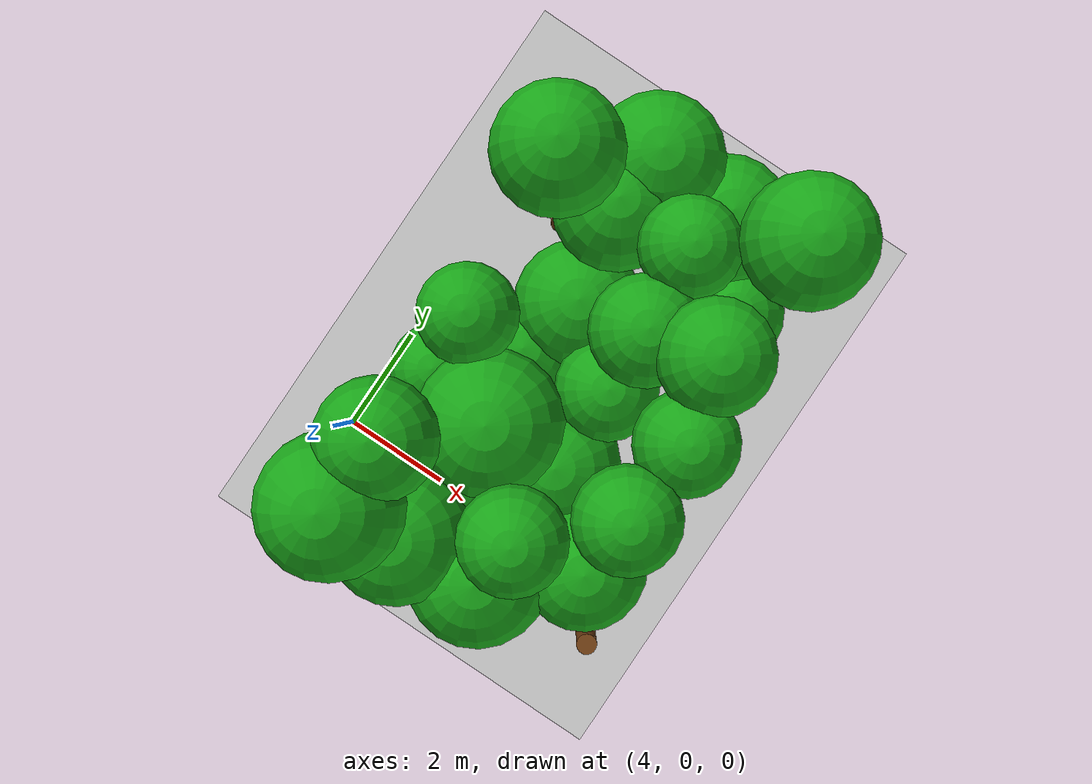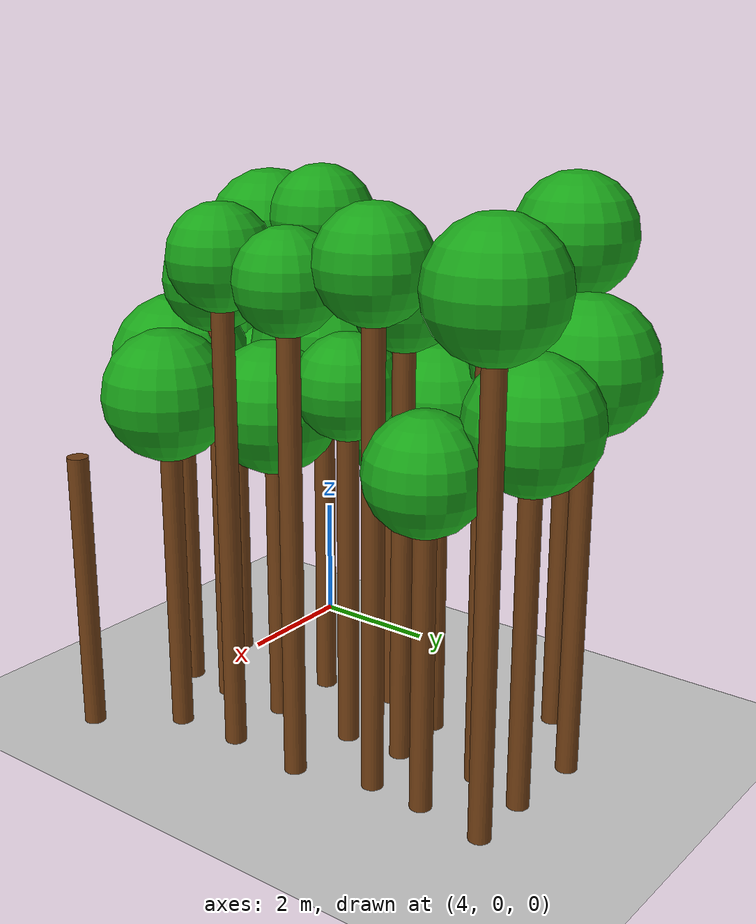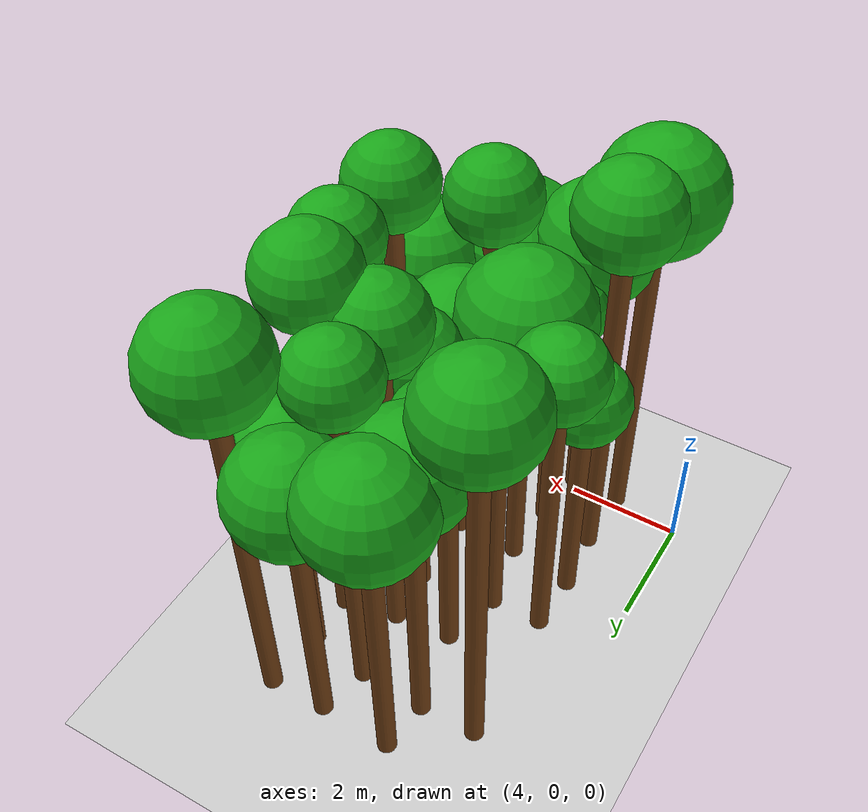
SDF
<sdf version="1.6">
 <world name="forest_world">
  <include><uri>model://sun</uri></include>
  <include><uri>model://ground_plane</uri></include>
  <model name="tree_1764_trunk">
   <static>true</static>
   <pose>5.23 -0.19 3.22 0 0 0</pose>
   <link name="link">
    <collision name="collision">
     <geometry><cylinder><radius>0.16</radius><length>6.44</length></cylinder></geometry>
    </collision>
    <visual name="visual">
     <geometry><cylinder><radius>0.16</radius><length>6.44</length></cylinder></geometry>
     <material><ambient>0.35 0.20 0.05 1</ambient><diffuse>0.45 0.25 0.08 1</diffuse></material>
    </visual>
   </link>
  </model>
  <model name="tree_1764_leaf">
   <static>true</static>
   <pose>5.23 -0.19 7.05 0 0 0</pose>
   <link name="link">
    <collision name="collision"><geometry><sphere><radius>1.02</radius></sphere></geometry></collision>
    <visual name="visual">
     <geometry><sphere><radius>1.02</radius></sphere></geometry>
     <material><ambient>0.05 0.45 0.05 1</ambient><diffuse>0.10 0.65 0.10 1</diffuse></material>
    </visual>
   </link>
  </model>
  <model name="tree_1765_trunk">
   <static>true</static>
   <pose>5.27 0.92 3.44 0 0 0</pose>
   <link name="link">
    <collision name="collision">
     <geometry><cylinder><radius>0.16</radius><length>6.87</length></cylinder></geometry>
    </collision>
    <visual name="visual">
     <geometry><cylinder><radius>0.16</radius><length>6.87</length></cylinder></geometry>
     <material><ambient>0.35 0.20 0.05 1</ambient><diffuse>0.45 0.25 0.08 1</diffuse></material>
    </visual>
   </link>
  </model>
  <model name="tree_1765_leaf">
   <static>true</static>
   <pose>5.27 0.92 7.38 0 0 0</pose>
   <link name="link">
    <collision name="collision"><geometry><sphere><radius>0.84</radius></sphere></geometry></collision>
    <visual name="visual">
     <geometry><sphere><radius>0.84</radius></sphere></geometry>
     <material><ambient>0.05 0.45 0.05 1</ambient><diffuse>0.10 0.65 0.10 1</diffuse></material>
    </visual>
   </link>
  </model>
  <model name="tree_1766_trunk">
   <static>true</static>
   <pose>5.18 1.97 2.12 0 0 0</pose>
   <link name="link">
    <collision name="collision">
     <geometry><cylinder><radius>0.16</radius><length>4.24</length></cylinder></geometry>
    </collision>
    <visual name="visual">
     <geometry><cylinder><radius>0.16</radius><length>4.24</length></cylinder></geometry>
     <material><ambient>0.35 0.20 0.05 1</ambient><diffuse>0.45 0.25 0.08 1</diffuse></material>
    </visual>
   </link>
  </model>
  <model name="tree_1766_leaf">
   <static>true</static>
   <pose>5.18 1.97 4.67 0 0 0</pose>
   <link name="link">
    <collision name="collision"><geometry><sphere><radius>0.72</radius></sphere></geometry></collision>
    <visual name="visual">
     <geometry><sphere><radius>0.72</radius></sphere></geometry>
     <material><ambient>0.05 0.45 0.05 1</ambient><diffuse>0.10 0.65 0.10 1</diffuse></material>
    </visual>
   </link>
  </model>
  <model name="tree_1767_trunk">
   <static>true</static>
   <pose>5.22 2.93 2.80 0 0 0</pose>
   <link name="link">
    <collision name="collision">
     <geometry><cylinder><radius>0.16</radius><length>5.59</length></cylinder></geometry>
    </collision>
    <visual name="visual">
     <geometry><cylinder><radius>0.16</radius><length>5.59</length></cylinder></geometry>
     <material><ambient>0.35 0.20 0.05 1</ambient><diffuse>0.45 0.25 0.08 1</diffuse></material>
    </visual>
   </link>
  </model>
  <model name="tree_1767_leaf">
   <static>true</static>
   <pose>5.22 2.93 6.04 0 0 0</pose>
   <link name="link">
    <collision name="collision"><geometry><sphere><radius>0.74</radius></sphere></geometry></collision>
    <visual name="visual">
     <geometry><sphere><radius>0.74</radius></sphere></geometry>
     <material><ambient>0.05 0.45 0.05 1</ambient><diffuse>0.10 0.65 0.10 1</diffuse></material>
    </visual>
   </link>
  </model>
  <model name="tree_1769_trunk">
   <static>true</static>
   <pose>5.14 5.33 3.49 0 0 0</pose>
   <link name="link">
    <collision name="collision">
     <geometry><cylinder><radius>0.16</radius><length>6.97</length></cylinder></geometry>
    </collision>
    <visual name="visual">
     <geometry><cylinder><radius>0.16</radius><length>6.97</length></cylinder></geometry>
     <material><ambient>0.35 0.20 0.05 1</ambient><diffuse>0.45 0.25 0.08 1</diffuse></material>
    </visual>
   </link>
  </model>
  <model name="tree_1769_leaf">
   <static>true</static>
   <pose>5.14 5.33 7.51 0 0 0</pose>
   <link name="link">
    <collision name="collision"><geometry><sphere><radius>0.90</radius></sphere></geometry></collision>
    <visual name="visual">
     <geometry><sphere><radius>0.90</radius></sphere></geometry>
     <material><ambient>0.05 0.45 0.05 1</ambient><diffuse>0.10 0.65 0.10 1</diffuse></material>
    </visual>
   </link>
  </model>
  <model name="tree_1819_trunk">
   <static>true</static>
   <pose>6.13 -0.22 2.58 0 0 0</pose>
   <link name="link">
    <collision name="collision">
     <geometry><cylinder><radius>0.16</radius><length>5.16</length></cylinder></geometry>
    </collision>
    <visual name="visual">
     <geometry><cylinder><radius>0.16</radius><length>5.16</length></cylinder></geometry>
     <material><ambient>0.35 0.20 0.05 1</ambient><diffuse>0.45 0.25 0.08 1</diffuse></material>
    </visual>
   </link>
  </model>
  <model name="tree_1819_leaf">
   <static>true</static>
   <pose>6.13 -0.22 5.78 0 0 0</pose>
   <link name="link">
    <collision name="collision"><geometry><sphere><radius>1.04</radius></sphere></geometry></collision>
    <visual name="visual">
     <geometry><sphere><radius>1.04</radius></sphere></geometry>
     <material><ambient>0.05 0.45 0.05 1</ambient><diffuse>0.10 0.65 0.10 1</diffuse></material>
    </visual>
   </link>
  </model>
  <model name="tree_1820_trunk">
   <static>true</static>
   <pose>6.26 0.75 2.34 0 0 0</pose>
   <link name="link">
    <collision name="collision">
     <geometry><cylinder><radius>0.16</radius><length>4.68</length></cylinder></geometry>
    </collision>
    <visual name="visual">
     <geometry><cylinder><radius>0.16</radius><length>4.68</length></cylinder></geometry>
     <material><ambient>0.35 0.20 0.05 1</ambient><diffuse>0.45 0.25 0.08 1</diffuse></material>
    </visual>
   </link>
  </model>
  <model name="tree_1820_leaf">
   <static>true</static>
   <pose>6.26 0.75 5.16 0 0 0</pose>
   <link name="link">
    <collision name="collision"><geometry><sphere><radius>0.80</radius></sphere></geometry></collision>
    <visual name="visual">
     <geometry><sphere><radius>0.80</radius></sphere></geometry>
     <material><ambient>0.05 0.45 0.05 1</ambient><diffuse>0.10 0.65 0.10 1</diffuse></material>
    </visual>
   </link>
  </model>
  <model name="tree_1821_trunk">
   <static>true</static>
   <pose>6.33 1.80 2.51 0 0 0</pose>
   <link name="link">
    <collision name="collision">
     <geometry><cylinder><radius>0.16</radius><length>5.02</length></cylinder></geometry>
    </collision>
    <visual name="visual">
     <geometry><cylinder><radius>0.16</radius><length>5.02</length></cylinder></geometry>
     <material><ambient>0.35 0.20 0.05 1</ambient><diffuse>0.45 0.25 0.08 1</diffuse></material>
    </visual>
   </link>
  </model>
  <model name="tree_1821_leaf">
   <static>true</static>
   <pose>6.33 1.80 5.68 0 0 0</pose>
   <link name="link">
    <collision name="collision"><geometry><sphere><radius>1.10</radius></sphere></geometry></collision>
    <visual name="visual">
     <geometry><sphere><radius>1.10</radius></sphere></geometry>
     <material><ambient>0.05 0.45 0.05 1</ambient><diffuse>0.10 0.65 0.10 1</diffuse></material>
    </visual>
   </link>
  </model>
  <model name="tree_1822_trunk">
   <static>true</static>
   <pose>6.12 2.96 2.07 0 0 0</pose>
   <link name="link">
    <collision name="collision">
     <geometry><cylinder><radius>0.16</radius><length>4.15</length></cylinder></geometry>
    </collision>
    <visual name="visual">
     <geometry><cylinder><radius>0.16</radius><length>4.15</length></cylinder></geometry>
     <material><ambient>0.35 0.20 0.05 1</ambient><diffuse>0.45 0.25 0.08 1</diffuse></material>
    </visual>
   </link>
  </model>
  <model name="tree_1822_leaf">
   <static>true</static>
   <pose>6.12 2.96 4.66 0 0 0</pose>
   <link name="link">
    <collision name="collision"><geometry><sphere><radius>0.86</radius></sphere></geometry></collision>
    <visual name="visual">
     <geometry><sphere><radius>0.86</radius></sphere></geometry>
     <material><ambient>0.05 0.45 0.05 1</ambient><diffuse>0.10 0.65 0.10 1</diffuse></material>
    </visual>
   </link>
  </model>
  <model name="tree_1823_trunk">
   <static>true</static>
   <pose>6.41 3.97 2.26 0 0 0</pose>
   <link name="link">
    <collision name="collision">
     <geometry><cylinder><radius>0.16</radius><length>4.53</length></cylinder></geometry>
    </collision>
    <visual name="visual">
     <geometry><cylinder><radius>0.16</radius><length>4.53</length></cylinder></geometry>
     <material><ambient>0.35 0.20 0.05 1</ambient><diffuse>0.45 0.25 0.08 1</diffuse></material>
    </visual>
   </link>
  </model>
  <model name="tree_1823_leaf">
   <static>true</static>
   <pose>6.41 3.97 5.10 0 0 0</pose>
   <link name="link">
    <collision name="collision"><geometry><sphere><radius>0.96</radius></sphere></geometry></collision>
    <visual name="visual">
     <geometry><sphere><radius>0.96</radius></sphere></geometry>
     <material><ambient>0.05 0.45 0.05 1</ambient><diffuse>0.10 0.65 0.10 1</diffuse></material>
    </visual>
   </link>
  </model>
  <model name="tree_1824_trunk">
   <static>true</static>
   <pose>6.12 5.36 2.71 0 0 0</pose>
   <link name="link">
    <collision name="collision">
     <geometry><cylinder><radius>0.16</radius><length>5.43</length></cylinder></geometry>
    </collision>
    <visual name="visual">
     <geometry><cylinder><radius>0.16</radius><length>5.43</length></cylinder></geometry>
     <material><ambient>0.35 0.20 0.05 1</ambient><diffuse>0.45 0.25 0.08 1</diffuse></material>
    </visual>
   </link>
  </model>
  <model name="tree_1824_leaf">
   <static>true</static>
   <pose>6.12 5.36 5.98 0 0 0</pose>
   <link name="link">
    <collision name="collision"><geometry><sphere><radius>0.93</radius></sphere></geometry></collision>
    <visual name="visual">
     <geometry><sphere><radius>0.93</radius></sphere></geometry>
     <material><ambient>0.05 0.45 0.05 1</ambient><diffuse>0.10 0.65 0.10 1</diffuse></material>
    </visual>
   </link>
  </model>
  <model name="tree_1825_trunk">
   <static>true</static>
   <pose>6.24 6.21 2.71 0 0 0</pose>
   <link name="link">
    <collision name="collision">
     <geometry><cylinder><radius>0.16</radius><length>5.43</length></cylinder></geometry>
    </collision>
    <visual name="visual">
     <geometry><cylinder><radius>0.16</radius><length>5.43</length></cylinder></geometry>
     <material><ambient>0.35 0.20 0.05 1</ambient><diffuse>0.45 0.25 0.08 1</diffuse></material>
    </visual>
   </link>
  </model>
  <model name="tree_1825_leaf">
   <static>true</static>
   <pose>6.24 6.21 6.01 0 0 0</pose>
   <link name="link">
    <collision name="collision"><geometry><sphere><radius>0.98</radius></sphere></geometry></collision>
    <visual name="visual">
     <geometry><sphere><radius>0.98</radius></sphere></geometry>
     <material><ambient>0.05 0.45 0.05 1</ambient><diffuse>0.10 0.65 0.10 1</diffuse></material>
    </visual>
   </link>
  </model>
  <model name="tree_1874_trunk">
   <static>true</static>
   <pose>7.41 -0.14 2.32 0 0 0</pose>
   <link name="link">
    <collision name="collision">
     <geometry><cylinder><radius>0.16</radius><length>4.64</length></cylinder></geometry>
    </collision>
    <visual name="visual">
     <geometry><cylinder><radius>0.16</radius><length>4.64</length></cylinder></geometry>
     <material><ambient>0.35 0.20 0.05 1</ambient><diffuse>0.45 0.25 0.08 1</diffuse></material>
    </visual>
   </link>
  </model>
  <model name="tree_1874_leaf">
   <static>true</static>
   <pose>7.41 -0.14 5.30 0 0 0</pose>
   <link name="link">
    <collision name="collision"><geometry><sphere><radius>1.09</radius></sphere></geometry></collision>
    <visual name="visual">
     <geometry><sphere><radius>1.09</radius></sphere></geometry>
     <material><ambient>0.05 0.45 0.05 1</ambient><diffuse>0.10 0.65 0.10 1</diffuse></material>
    </visual>
   </link>
  </model>
  <model name="tree_1875_trunk">
   <static>true</static>
   <pose>7.50 0.72 3.13 0 0 0</pose>
   <link name="link">
    <collision name="collision">
     <geometry><cylinder><radius>0.16</radius><length>6.26</length></cylinder></geometry>
    </collision>
    <visual name="visual">
     <geometry><cylinder><radius>0.16</radius><length>6.26</length></cylinder></geometry>
     <material><ambient>0.35 0.20 0.05 1</ambient><diffuse>0.45 0.25 0.08 1</diffuse></material>
    </visual>
   </link>
  </model>
  <model name="tree_1875_leaf">
   <static>true</static>
   <pose>7.50 0.72 6.73 0 0 0</pose>
   <link name="link">
    <collision name="collision"><geometry><sphere><radius>0.78</radius></sphere></geometry></collision>
    <visual name="visual">
     <geometry><sphere><radius>0.78</radius></sphere></geometry>
     <material><ambient>0.05 0.45 0.05 1</ambient><diffuse>0.10 0.65 0.10 1</diffuse></material>
    </visual>
   </link>
  </model>
  <model name="tree_1876_trunk">
   <static>true</static>
   <pose>7.46 1.79 2.18 0 0 0</pose>
   <link name="link">
    <collision name="collision">
     <geometry><cylinder><radius>0.16</radius><length>4.36</length></cylinder></geometry>
    </collision>
    <visual name="visual">
     <geometry><cylinder><radius>0.16</radius><length>4.36</length></cylinder></geometry>
     <material><ambient>0.35 0.20 0.05 1</ambient><diffuse>0.45 0.25 0.08 1</diffuse></material>
    </visual>
   </link>
  </model>
  <model name="tree_1876_leaf">
   <static>true</static>
   <pose>7.46 1.79 4.96 0 0 0</pose>
   <link name="link">
    <collision name="collision"><geometry><sphere><radius>0.99</radius></sphere></geometry></collision>
    <visual name="visual">
     <geometry><sphere><radius>0.99</radius></sphere></geometry>
     <material><ambient>0.05 0.45 0.05 1</ambient><diffuse>0.10 0.65 0.10 1</diffuse></material>
    </visual>
   </link>
  </model>
  <model name="tree_1877_trunk">
   <static>true</static>
   <pose>7.46 3.15 2.51 0 0 0</pose>
   <link name="link">
    <collision name="collision">
     <geometry><cylinder><radius>0.16</radius><length>5.02</length></cylinder></geometry>
    </collision>
    <visual name="visual">
     <geometry><cylinder><radius>0.16</radius><length>5.02</length></cylinder></geometry>
     <material><ambient>0.35 0.20 0.05 1</ambient><diffuse>0.45 0.25 0.08 1</diffuse></material>
    </visual>
   </link>
  </model>
  <model name="tree_1877_leaf">
   <static>true</static>
   <pose>7.46 3.15 5.49 0 0 0</pose>
   <link name="link">
    <collision name="collision"><geometry><sphere><radius>0.77</radius></sphere></geometry></collision>
    <visual name="visual">
     <geometry><sphere><radius>0.77</radius></sphere></geometry>
     <material><ambient>0.05 0.45 0.05 1</ambient><diffuse>0.10 0.65 0.10 1</diffuse></material>
    </visual>
   </link>
  </model>
  <model name="tree_1878_trunk">
   <static>true</static>
   <pose>7.40 4.07 3.21 0 0 0</pose>
   <link name="link">
    <collision name="collision">
     <geometry><cylinder><radius>0.16</radius><length>6.42</length></cylinder></geometry>
    </collision>
    <visual name="visual">
     <geometry><cylinder><radius>0.16</radius><length>6.42</length></cylinder></geometry>
     <material><ambient>0.35 0.20 0.05 1</ambient><diffuse>0.45 0.25 0.08 1</diffuse></material>
    </visual>
   </link>
  </model>
  <model name="tree_1878_leaf">
   <static>true</static>
   <pose>7.40 4.07 6.89 0 0 0</pose>
   <link name="link">
    <collision name="collision"><geometry><sphere><radius>0.78</radius></sphere></geometry></collision>
    <visual name="visual">
     <geometry><sphere><radius>0.78</radius></sphere></geometry>
     <material><ambient>0.05 0.45 0.05 1</ambient><diffuse>0.10 0.65 0.10 1</diffuse></material>
    </visual>
   </link>
  </model>
  <model name="tree_1879_trunk">
   <static>true</static>
   <pose>7.27 5.31 3.30 0 0 0</pose>
   <link name="link">
    <collision name="collision">
     <geometry><cylinder><radius>0.16</radius><length>6.60</length></cylinder></geometry>
    </collision>
    <visual name="visual">
     <geometry><cylinder><radius>0.16</radius><length>6.60</length></cylinder></geometry>
     <material><ambient>0.35 0.20 0.05 1</ambient><diffuse>0.45 0.25 0.08 1</diffuse></material>
    </visual>
   </link>
  </model>
  <model name="tree_1879_leaf">
   <static>true</static>
   <pose>7.27 5.31 7.02 0 0 0</pose>
   <link name="link">
    <collision name="collision"><geometry><sphere><radius>0.71</radius></sphere></geometry></collision>
    <visual name="visual">
     <geometry><sphere><radius>0.71</radius></sphere></geometry>
     <material><ambient>0.05 0.45 0.05 1</ambient><diffuse>0.10 0.65 0.10 1</diffuse></material>
    </visual>
   </link>
  </model>
  <model name="tree_1880_trunk">
   <static>true</static>
   <pose>7.50 6.16 2.46 0 0 0</pose>
   <link name="link">
    <collision name="collision">
     <geometry><cylinder><radius>0.16</radius><length>4.93</length></cylinder></geometry>
    </collision>
    <visual name="visual">
     <geometry><cylinder><radius>0.16</radius><length>4.93</length></cylinder></geometry>
     <material><ambient>0.35 0.20 0.05 1</ambient><diffuse>0.45 0.25 0.08 1</diffuse></material>
    </visual>
   </link>
  </model>
  <model name="tree_1880_leaf">
   <static>true</static>
   <pose>7.50 6.16 5.50 0 0 0</pose>
   <link name="link">
    <collision name="collision"><geometry><sphere><radius>0.94</radius></sphere></geometry></collision>
    <visual name="visual">
     <geometry><sphere><radius>0.94</radius></sphere></geometry>
     <material><ambient>0.05 0.45 0.05 1</ambient><diffuse>0.10 0.65 0.10 1</diffuse></material>
    </visual>
   </link>
  </model>
  <model name="tree_1930_trunk">
   <static>true</static>
   <pose>8.63 0.80 2.33 0 0 0</pose>
   <link name="link">
    <collision name="collision">
     <geometry><cylinder><radius>0.16</radius><length>4.66</length></cylinder></geometry>
    </collision>
    <visual name="visual">
     <geometry><cylinder><radius>0.16</radius><length>4.66</length></cylinder></geometry>
     <material><ambient>0.35 0.20 0.05 1</ambient><diffuse>0.45 0.25 0.08 1</diffuse></material>
    </visual>
   </link>
  </model>
  <model name="tree_1930_leaf">
   <static>true</static>
   <pose>8.63 0.80 5.23 0 0 0</pose>
   <link name="link">
    <collision name="collision"><geometry><sphere><radius>0.96</radius></sphere></geometry></collision>
    <visual name="visual">
     <geometry><sphere><radius>0.96</radius></sphere></geometry>
     <material><ambient>0.05 0.45 0.05 1</ambient><diffuse>0.10 0.65 0.10 1</diffuse></material>
    </visual>
   </link>
  </model>
  <model name="tree_1931_trunk">
   <static>true</static>
   <pose>8.57 1.86 3.43 0 0 0</pose>
   <link name="link">
    <collision name="collision">
     <geometry><cylinder><radius>0.16</radius><length>6.86</length></cylinder></geometry>
    </collision>
    <visual name="visual">
     <geometry><cylinder><radius>0.16</radius><length>6.86</length></cylinder></geometry>
     <material><ambient>0.35 0.20 0.05 1</ambient><diffuse>0.45 0.25 0.08 1</diffuse></material>
    </visual>
   </link>
  </model>
  <model name="tree_1931_leaf">
   <static>true</static>
   <pose>8.57 1.86 7.31 0 0 0</pose>
   <link name="link">
    <collision name="collision"><geometry><sphere><radius>0.75</radius></sphere></geometry></collision>
    <visual name="visual">
     <geometry><sphere><radius>0.75</radius></sphere></geometry>
     <material><ambient>0.05 0.45 0.05 1</ambient><diffuse>0.10 0.65 0.10 1</diffuse></material>
    </visual>
   </link>
  </model>
  <model name="tree_1932_trunk">
   <static>true</static>
   <pose>8.67 3.12 3.35 0 0 0</pose>
   <link name="link">
    <collision name="collision">
     <geometry><cylinder><radius>0.16</radius><length>6.70</length></cylinder></geometry>
    </collision>
    <visual name="visual">
     <geometry><cylinder><radius>0.16</radius><length>6.70</length></cylinder></geometry>
     <material><ambient>0.35 0.20 0.05 1</ambient><diffuse>0.45 0.25 0.08 1</diffuse></material>
    </visual>
   </link>
  </model>
  <model name="tree_1932_leaf">
   <static>true</static>
   <pose>8.67 3.12 7.14 0 0 0</pose>
   <link name="link">
    <collision name="collision"><geometry><sphere><radius>0.73</radius></sphere></geometry></collision>
    <visual name="visual">
     <geometry><sphere><radius>0.73</radius></sphere></geometry>
     <material><ambient>0.05 0.45 0.05 1</ambient><diffuse>0.10 0.65 0.10 1</diffuse></material>
    </visual>
   </link>
  </model>
  <model name="tree_1933_trunk">
   <static>true</static>
   <pose>8.33 4.26 3.48 0 0 0</pose>
   <link name="link">
    <collision name="collision">
     <geometry><cylinder><radius>0.16</radius><length>6.96</length></cylinder></geometry>
    </collision>
    <visual name="visual">
     <geometry><cylinder><radius>0.16</radius><length>6.96</length></cylinder></geometry>
     <material><ambient>0.35 0.20 0.05 1</ambient><diffuse>0.45 0.25 0.08 1</diffuse></material>
    </visual>
   </link>
  </model>
  <model name="tree_1933_leaf">
   <static>true</static>
   <pose>8.33 4.26 7.44 0 0 0</pose>
   <link name="link">
    <collision name="collision"><geometry><sphere><radius>0.80</radius></sphere></geometry></collision>
    <visual name="visual">
     <geometry><sphere><radius>0.80</radius></sphere></geometry>
     <material><ambient>0.05 0.45 0.05 1</ambient><diffuse>0.10 0.65 0.10 1</diffuse></material>
    </visual>
   </link>
  </model>
  <model name="tree_1934_trunk">
   <static>true</static>
   <pose>8.36 5.12 2.18 0 0 0</pose>
   <link name="link">
    <collision name="collision">
     <geometry><cylinder><radius>0.16</radius><length>4.36</length></cylinder></geometry>
    </collision>
    <visual name="visual">
     <geometry><cylinder><radius>0.16</radius><length>4.36</length></cylinder></geometry>
     <material><ambient>0.35 0.20 0.05 1</ambient><diffuse>0.45 0.25 0.08 1</diffuse></material>
    </visual>
   </link>
  </model>
  <model name="tree_1934_leaf">
   <static>true</static>
   <pose>8.36 5.12 4.86 0 0 0</pose>
   <link name="link">
    <collision name="collision"><geometry><sphere><radius>0.84</radius></sphere></geometry></collision>
    <visual name="visual">
     <geometry><sphere><radius>0.84</radius></sphere></geometry>
     <material><ambient>0.05 0.45 0.05 1</ambient><diffuse>0.10 0.65 0.10 1</diffuse></material>
    </visual>
   </link>
  </model>
  <model name="tree_1935_trunk">
   <static>true</static>
   <pose>8.50 6.18 3.41 0 0 0</pose>
   <link name="link">
    <collision name="collision">
     <geometry><cylinder><radius>0.16</radius><length>6.82</length></cylinder></geometry>
    </collision>
    <visual name="visual">
     <geometry><cylinder><radius>0.16</radius><length>6.82</length></cylinder></geometry>
     <material><ambient>0.35 0.20 0.05 1</ambient><diffuse>0.45 0.25 0.08 1</diffuse></material>
    </visual>
   </link>
  </model>
  <model name="tree_1935_leaf">
   <static>true</static>
   <pose>8.50 6.18 7.38 0 0 0</pose>
   <link name="link">
    <collision name="collision"><geometry><sphere><radius>0.92</radius></sphere></geometry></collision>
    <visual name="visual">
     <geometry><sphere><radius>0.92</radius></sphere></geometry>
     <material><ambient>0.05 0.45 0.05 1</ambient><diffuse>0.10 0.65 0.10 1</diffuse></material>
    </visual>
   </link>
  </model>
  <model name="tree_1984_trunk">
   <static>true</static>
   <pose>9.45 -0.29 2.14 0 0 0</pose>
   <link name="link">
    <collision name="collision">
     <geometry><cylinder><radius>0.16</radius><length>4.29</length></cylinder></geometry>
    </collision>
    <visual name="visual">
     <geometry><cylinder><radius>0.16</radius><length>4.29</length></cylinder></geometry>
     <material><ambient>0.35 0.20 0.05 1</ambient><diffuse>0.45 0.25 0.08 1</diffuse></material>
    </visual>
   </link>
  </model>
 </world>
</sdf>
